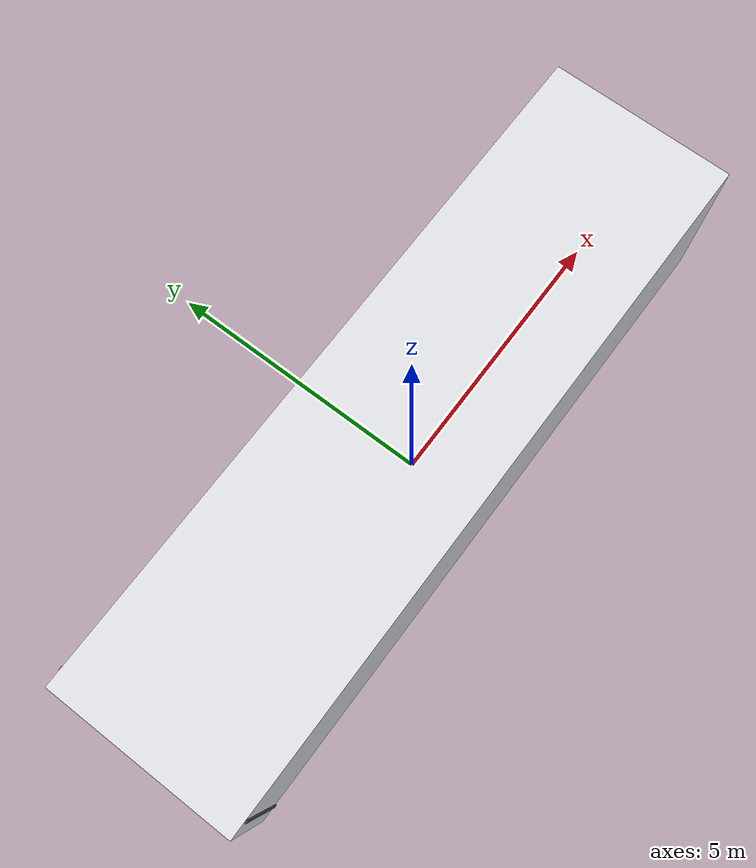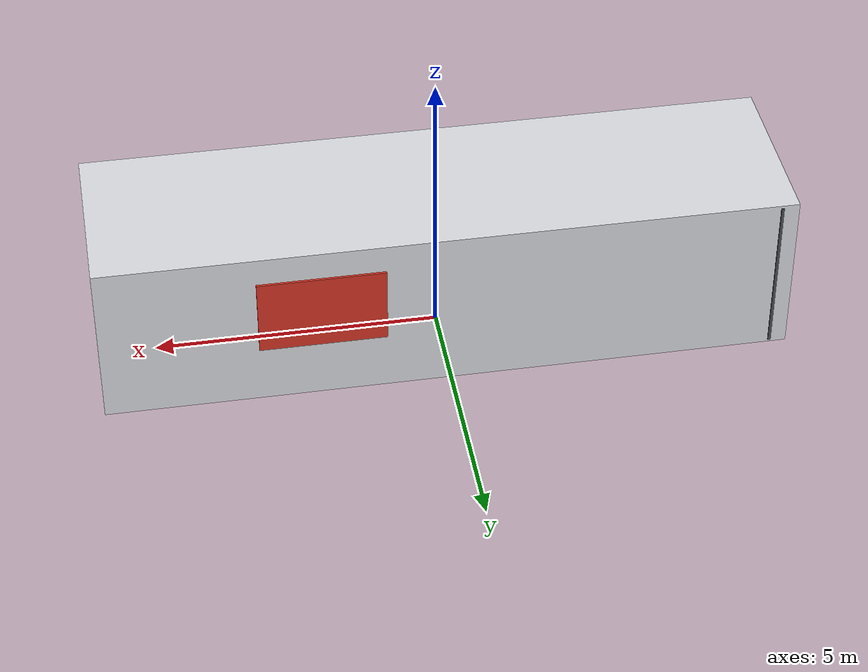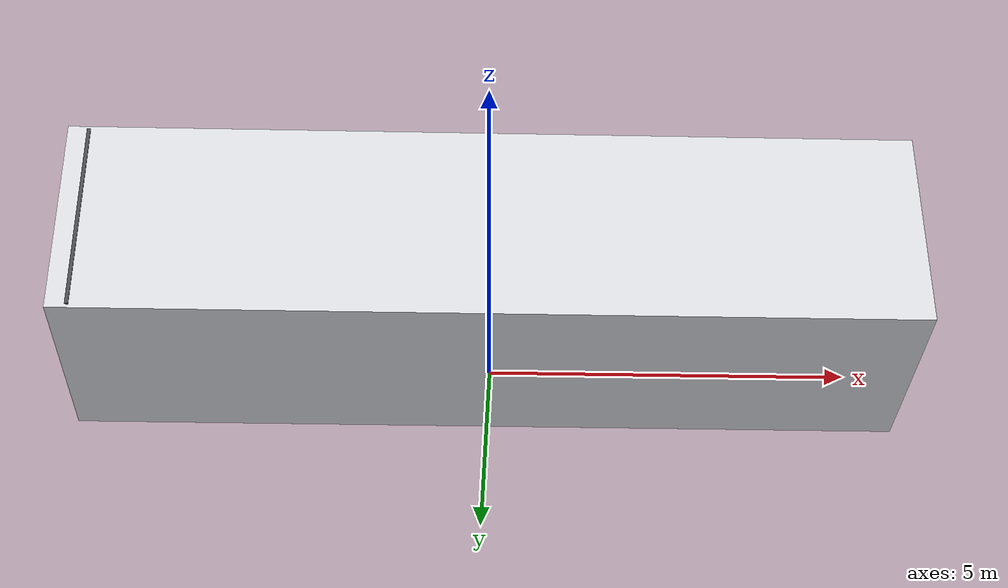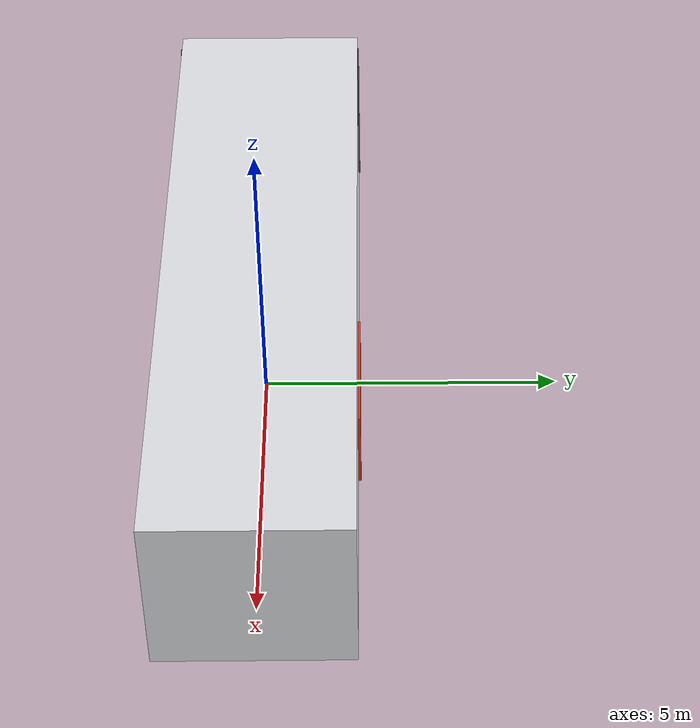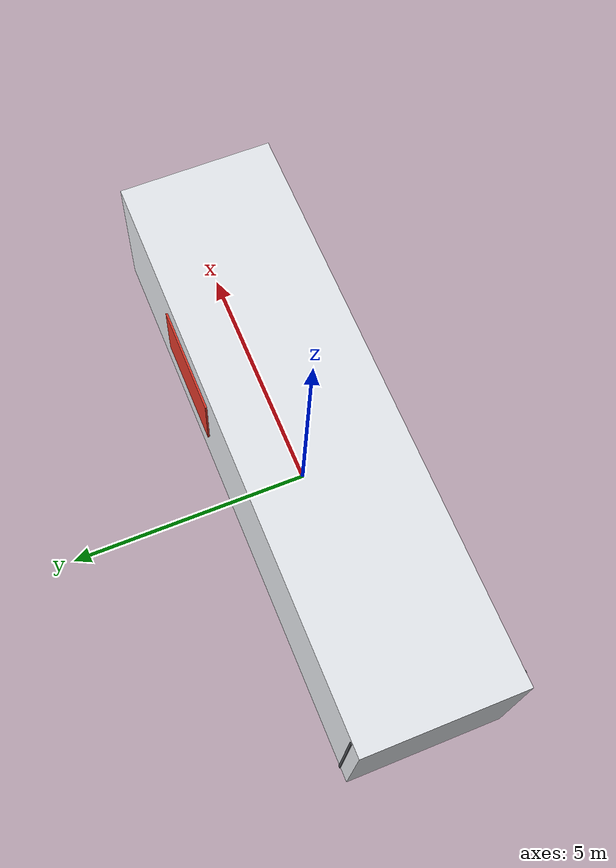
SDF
<?xml version="1.0" ?>
<sdf version="1.9">
  <model name="battery_container">
    <static>true</static>
    <link name="container_link">
      <collision name="container_collision">
        <pose>0 0 1.5 0 0 0</pose>
        <geometry>
          <box>
            <size>12 3.2 3.0</size>
          </box>
        </geometry>
      </collision>

      <visual name="container_visual">
        <pose>0 0 1.5 0 0 0</pose>
        <geometry>
          <box>
            <size>12 3.2 3.0</size>
          </box>
        </geometry>
        <material>
          <ambient>0.83 0.84 0.86 1</ambient>
          <diffuse>0.90 0.91 0.93 1</diffuse>
        </material>
      </visual>

      <visual name="door_line_left">
        <pose>-5.7 0 1.5 0 0 0</pose>
        <geometry>
          <box>
            <size>0.05 3.25 2.9</size>
          </box>
        </geometry>
        <material>
          <ambient>0.25 0.26 0.28 1</ambient>
          <diffuse>0.30 0.31 0.33 1</diffuse>
        </material>
      </visual>

      <visual name="thermal_alert_patch">
        <pose>2.2 1.63 1.8 0 0 0</pose>
        <geometry>
          <box>
            <size>2.2 0.04 1.4</size>
          </box>
        </geometry>
        <material>
          <ambient>0.76 0.16 0.12 1</ambient>
          <diffuse>0.88 0.22 0.16 1</diffuse>
          <emissive>0.25 0.04 0.02 1</emissive>
        </material>
      </visual>
    </link>
  </model>
</sdf>
